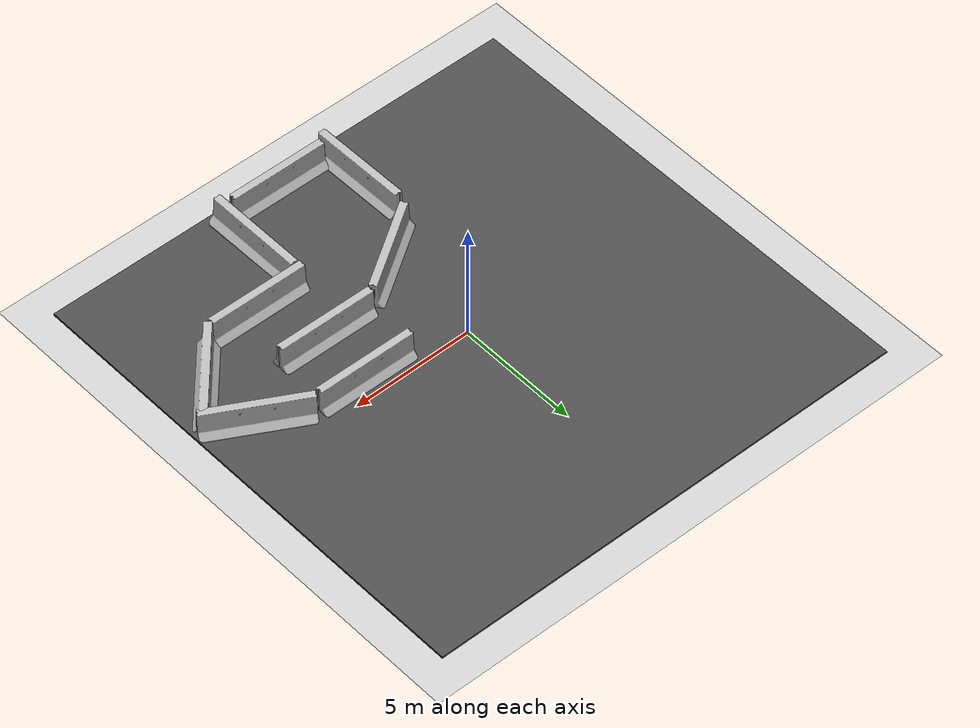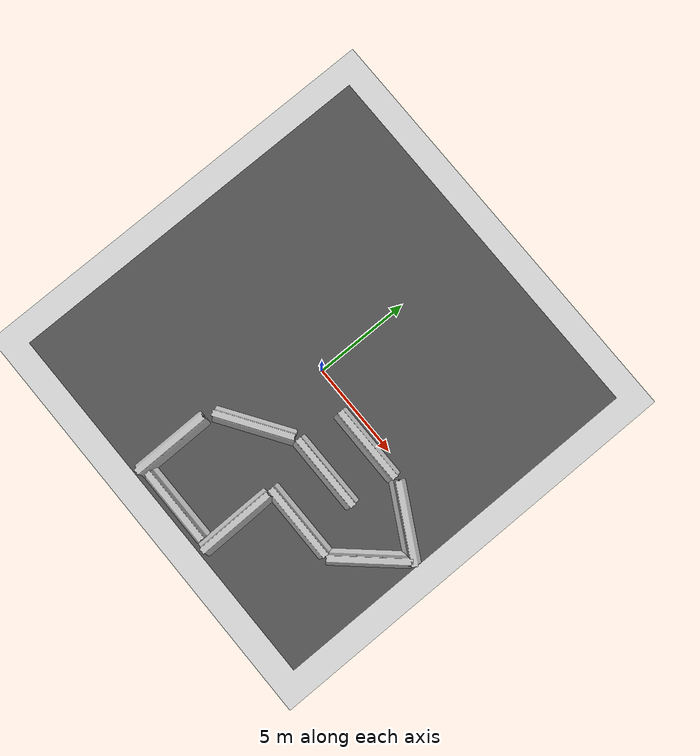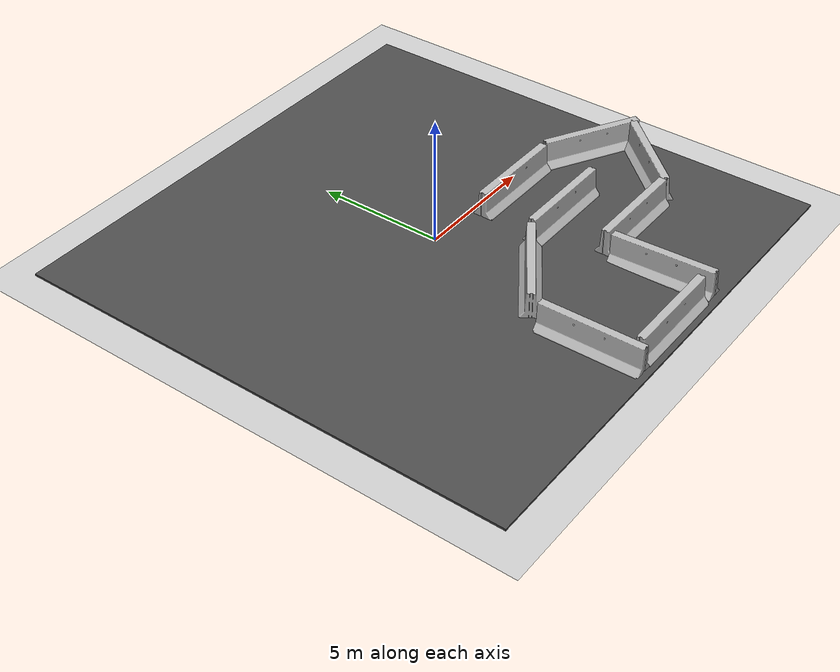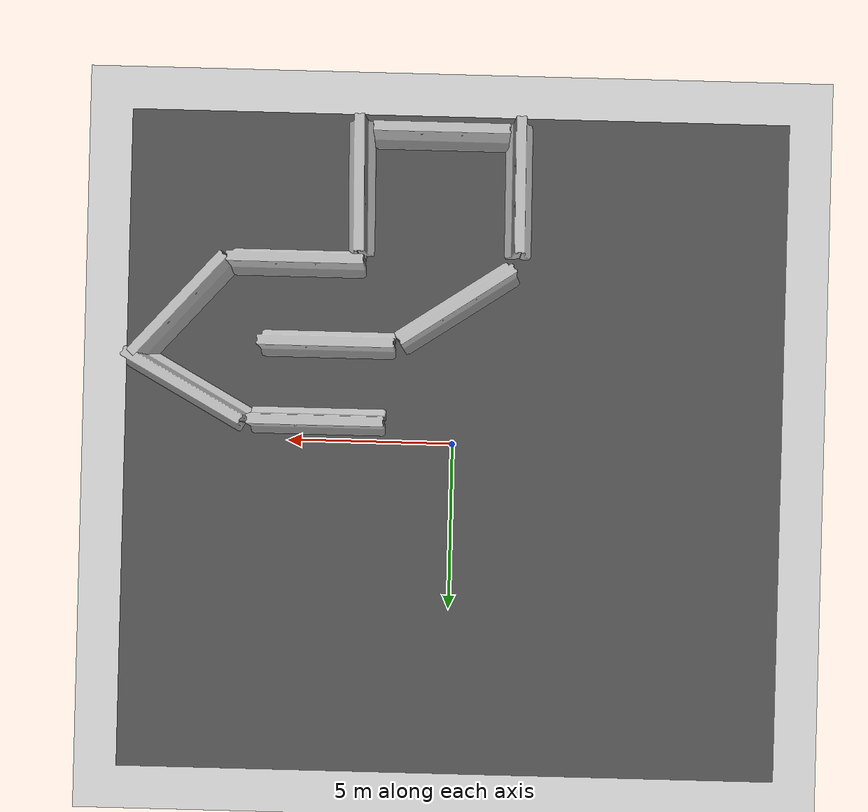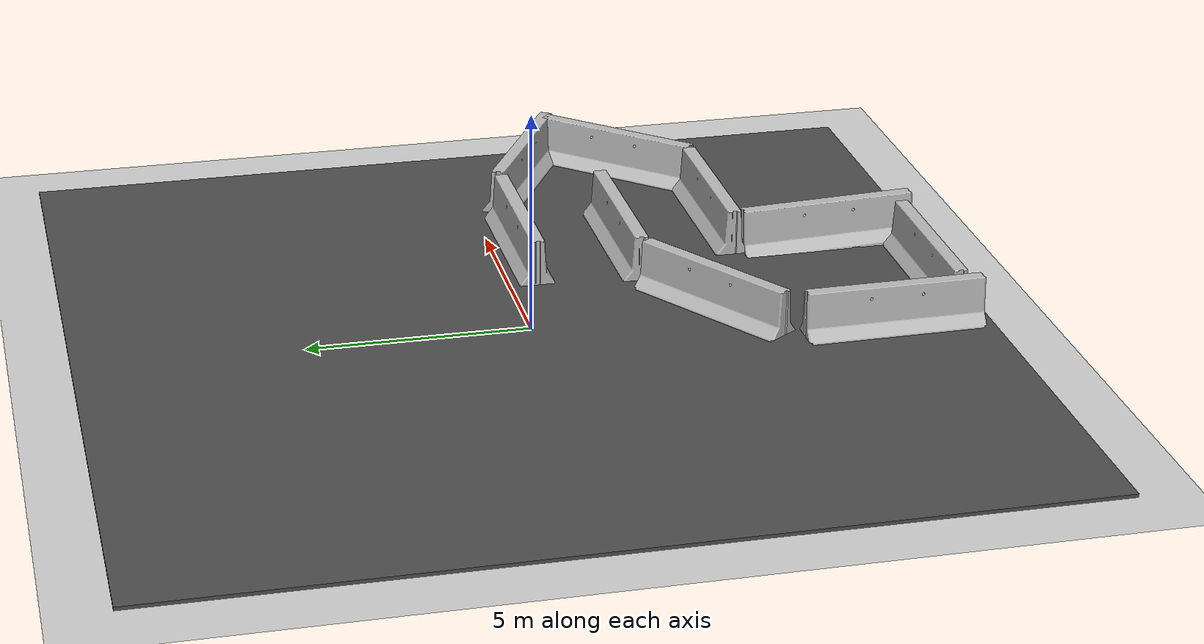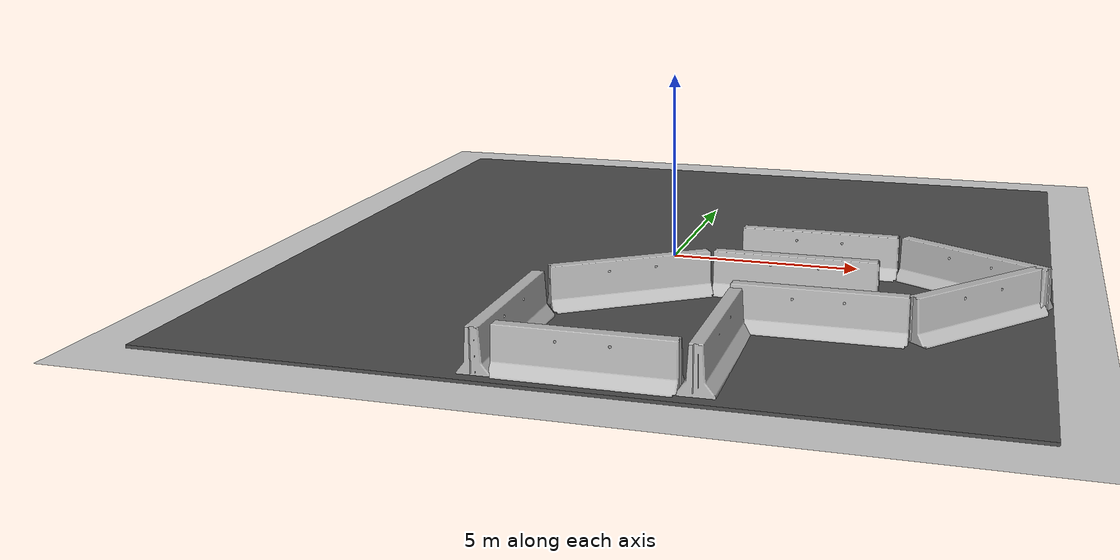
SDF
<sdf version="1.6">
 <world name="default">
  <light name="sun" type="directional">
   <pose>0 0 10 0 -0 0</pose>
   <diffuse>0.8 0.8 0.8 1</diffuse>
   <specular>0.2 0.2 0.2 1</specular>
   <attenuation>
    <range>1000</range>
    <constant>0.9</constant>
    <linear>0.01</linear>
    <quadratic>0.001</quadratic>
   </attenuation>
   <direction>-0.5 0.1 -0.9</direction>
  </light>
  <model name="ground_plane">
   <static>1</static>
   <link name="link">
    <collision name="collision">
     <geometry><plane><normal>0 0 1</normal><size>100 100</size></plane></geometry>
     <surface>
      <contact><collide_bitmask>65535</collide_bitmask></contact>
      <friction><ode><mu>100</mu><mu2>50</mu2></ode></friction>
     </surface>
    </collision>
    <visual name="visual">
     <cast_shadows>0</cast_shadows>
     <geometry><plane><normal>0 0 1</normal><size>100 100</size></plane></geometry>
     <material>
      <script><uri>file://media/materials/scripts/gazebo.material</uri><name>Gazebo/Grey</name></script>
     </material>
    </visual>
   </link>
  </model>
  <gravity>0 0 -9.8</gravity>
  <magnetic_field>6e-06 2.3e-05 -4.2e-05</magnetic_field>
  <atmosphere type="adiabatic"/>
  <physics name="default_physics" default="0" type="ode">
   <max_step_size>0.001</max_step_size>
   <real_time_factor>1</real_time_factor>
   <real_time_update_rate>1000</real_time_update_rate>
  </physics>
  <scene><ambient>0.4 0.4 0.4 1</ambient><background>0.7 0.7 0.7 1</background><shadows>1</shadows></scene>
  <spherical_coordinates>
   <surface_model>EARTH_WGS84</surface_model>
   <latitude_deg>0</latitude_deg>
   <longitude_deg>0</longitude_deg>
   <elevation>0</elevation>
   <heading_deg>0</heading_deg>
  </spherical_coordinates>
  <model name="asphalt_plane">
   <static>1</static>
   <link name="link">
    <collision name="collision"><geometry><box><size>20 20 0.1</size></box></geometry></collision>
    <visual name="visual">
     <cast_shadows>0</cast_shadows>
     <geometry><box><size>20 20 0.1</size></box></geometry>
     <material>
      <script>
       <uri>model://asphalt_plane/materials/scripts</uri>
       <uri>model://asphalt_plane/materials/textures</uri>
       <name>vrc/asphalt</name>
      </script>
     </material>
    </visual>
   </link>
   <pose>-0.011182 0.028109 0 0 -0 0</pose>
  </model>
  <model name="jersey_barrier">
   <static>1</static>
   <link name="link">
    <visual name="visual">
     <geometry><mesh><uri>model://jersey_barrier/meshes/jersey_barrier.dae</uri></mesh></geometry>
    </visual>
    <collision name="upright">
     <pose>0 0 0.5715 0 -0 0</pose>
     <geometry><box><size>4.06542 0.3063 1.143</size></box></geometry>
    </collision>
    <collision name="base">
     <pose>0 0 0.032258 0 -0 0</pose>
     <geometry><box><size>4.06542 0.8107 0.064516</size></box></geometry>
    </collision>
    <collision name="base2">
     <pose>0 0 0.1 0 -0 0</pose>
     <geometry><box><size>4.06542 0.65 0.1</size></box></geometry>
    </collision>
    <collision name="base3">
     <pose>0 0 0.2 0 -0 0</pose>
     <geometry><box><size>4.06542 0.5 0.1</size></box></geometry>
    </collision>
    <collision name="left-angle">
     <pose>0 -0.224 0.2401 0.9 -0 0</pose>
     <geometry><box><size>4.06542 0.5 0.064516</size></box></geometry>
    </collision>
    <collision name="right-angle">
     <pose>0 0.224 0.2401 -0.9 0 0</pose>
     <geometry><box><size>4.06542 0.5 0.064516</size></box></geometry>
    </collision>
   </link>
   <pose>-1.81278 -7.70724 0 0 0 -1.56071</pose>
  </model>
  <model name="jersey_barrier_0">
   <static>1</static>
   <link name="link">
    <visual name="visual">
     <geometry><mesh><uri>model://jersey_barrier/meshes/jersey_barrier.dae</uri></mesh></geometry>
    </visual>
    <collision name="upright">
     <pose>0 0 0.5715 0 -0 0</pose>
     <geometry><box><size>4.06542 0.3063 1.143</size></box></geometry>
    </collision>
    <collision name="base">
     <pose>0 0 0.032258 0 -0 0</pose>
     <geometry><box><size>4.06542 0.8107 0.064516</size></box></geometry>
    </collision>
    <collision name="base2">
     <pose>0 0 0.1 0 -0 0</pose>
     <geometry><box><size>4.06542 0.65 0.1</size></box></geometry>
    </collision>
    <collision name="base3">
     <pose>0 0 0.2 0 -0 0</pose>
     <geometry><box><size>4.06542 0.5 0.1</size></box></geometry>
    </collision>
    <collision name="left-angle">
     <pose>0 -0.224 0.2401 0.9 -0 0</pose>
     <geometry><box><size>4.06542 0.5 0.064516</size></box></geometry>
    </collision>
    <collision name="right-angle">
     <pose>0 0.224 0.2401 -0.9 0 0</pose>
     <geometry><box><size>4.06542 0.5 0.064516</size></box></geometry>
    </collision>
   </link>
   <pose>0.550087 -9.34139 0 0 -0 0</pose>
  </model>
  <model name="jersey_barrier_1">
   <static>1</static>
   <link name="link">
    <visual name="visual">
     <geometry><mesh><uri>model://jersey_barrier/meshes/jersey_barrier.dae</uri></mesh></geometry>
    </visual>
    <collision name="upright">
     <pose>0 0 0.5715 0 -0 0</pose>
     <geometry><box><size>4.06542 0.3063 1.143</size></box></geometry>
    </collision>
    <collision name="base">
     <pose>0 0 0.032258 0 -0 0</pose>
     <geometry><box><size>4.06542 0.8107 0.064516</size></box></geometry>
    </collision>
    <collision name="base2">
     <pose>0 0 0.1 0 -0 0</pose>
     <geometry><box><size>4.06542 0.65 0.1</size></box></geometry>
    </collision>
    <collision name="base3">
     <pose>0 0 0.2 0 -0 0</pose>
     <geometry><box><size>4.06542 0.5 0.1</size></box></geometry>
    </collision>
    <collision name="left-angle">
     <pose>0 -0.224 0.2401 0.9 -0 0</pose>
     <geometry><box><size>4.06542 0.5 0.064516</size></box></geometry>
    </collision>
    <collision name="right-angle">
     <pose>0 0.224 0.2401 -0.9 0 0</pose>
     <geometry><box><size>4.06542 0.5 0.064516</size></box></geometry>
    </collision>
   </link>
   <pose>2.94739 -7.68339 0 -0.000437 -0.026825 -1.55451</pose>
  </model>
  <model name="jersey_barrier_2">
   <static>1</static>
   <link name="link">
    <visual name="visual">
     <geometry><mesh><uri>model://jersey_barrier/meshes/jersey_barrier.dae</uri></mesh></geometry>
    </visual>
    <collision name="upright">
     <pose>0 0 0.5715 0 -0 0</pose>
     <geometry><box><size>4.06542 0.3063 1.143</size></box></geometry>
    </collision>
    <collision name="base">
     <pose>0 0 0.032258 0 -0 0</pose>
     <geometry><box><size>4.06542 0.8107 0.064516</size></box></geometry>
    </collision>
    <collision name="base2">
     <pose>0 0 0.1 0 -0 0</pose>
     <geometry><box><size>4.06542 0.65 0.1</size></box></geometry>
    </collision>
    <collision name="base3">
     <pose>0 0 0.2 0 -0 0</pose>
     <geometry><box><size>4.06542 0.5 0.1</size></box></geometry>
    </collision>
    <collision name="left-angle">
     <pose>0 -0.224 0.2401 0.9 -0 0</pose>
     <geometry><box><size>4.06542 0.5 0.064516</size></box></geometry>
    </collision>
    <collision name="right-angle">
     <pose>0 0.224 0.2401 -0.9 0 0</pose>
     <geometry><box><size>4.06542 0.5 0.064516</size></box></geometry>
    </collision>
   </link>
   <pose>-0.022966 -4.13469 0 0 -0 0.588233</pose>
  </model>
  <model name="jersey_barrier_3">
   <static>1</static>
   <link name="link">
    <visual name="visual">
     <geometry><mesh><uri>model://jersey_barrier/meshes/jersey_barrier.dae</uri></mesh></geometry>
    </visual>
    <collision name="upright">
     <pose>0 0 0.5715 0 -0 0</pose>
     <geometry><box><size>4.06542 0.3063 1.143</size></box></geometry>
    </collision>
    <collision name="base">
     <pose>0 0 0.032258 0 -0 0</pose>
     <geometry><box><size>4.06542 0.8107 0.064516</size></box></geometry>
    </collision>
    <collision name="base2">
     <pose>0 0 0.1 0 -0 0</pose>
     <geometry><box><size>4.06542 0.65 0.1</size></box></geometry>
    </collision>
    <collision name="base3">
     <pose>0 0 0.2 0 -0 0</pose>
     <geometry><box><size>4.06542 0.5 0.1</size></box></geometry>
    </collision>
    <collision name="left-angle">
     <pose>0 -0.224 0.2401 0.9 -0 0</pose>
     <geometry><box><size>4.06542 0.5 0.064516</size></box></geometry>
    </collision>
    <collision name="right-angle">
     <pose>0 0.224 0.2401 -0.9 0 0</pose>
     <geometry><box><size>4.06542 0.5 0.064516</size></box></geometry>
    </collision>
   </link>
   <pose>3.82947 -2.9445 0 0 -0 0</pose>
  </model>
  <model name="jersey_barrier_4">
   <static>1</static>
   <link name="link">
    <visual name="visual">
     <geometry><mesh><uri>model://jersey_barrier/meshes/jersey_barrier.dae</uri></mesh></geometry>
    </visual>
    <collision name="upright">
     <pose>0 0 0.5715 0 -0 0</pose>
     <geometry><box><size>4.06542 0.3063 1.143</size></box></geometry>
    </collision>
    <collision name="base">
     <pose>0 0 0.032258 0 -0 0</pose>
     <geometry><box><size>4.06542 0.8107 0.064516</size></box></geometry>
    </collision>
    <collision name="base2">
     <pose>0 0 0.1 0 -0 0</pose>
     <geometry><box><size>4.06542 0.65 0.1</size></box></geometry>
    </collision>
    <collision name="base3">
     <pose>0 0 0.2 0 -0 0</pose>
     <geometry><box><size>4.06542 0.5 0.1</size></box></geometry>
    </collision>
    <collision name="left-angle">
     <pose>0 -0.224 0.2401 0.9 -0 0</pose>
     <geometry><box><size>4.06542 0.5 0.064516</size></box></geometry>
    </collision>
    <collision name="right-angle">
     <pose>0 0.224 0.2401 -0.9 0 0</pose>
     <geometry><box><size>4.06542 0.5 0.064516</size></box></geometry>
    </collision>
   </link>
   <pose>4.78787 -5.39245 0 0 -0 0</pose>
  </model>
  <model name="jersey_barrier_5">
   <static>1</static>
   <link name="link">
    <visual name="visual">
     <geometry><mesh><uri>model://jersey_barrier/meshes/jersey_barrier.dae</uri></mesh></geometry>
    </visual>
    <collision name="upright">
     <pose>0 0 0.5715 0 -0 0</pose>
     <geometry><box><size>4.06542 0.3063 1.143</size></box></geometry>
    </collision>
    <collision name="base">
     <pose>0 0 0.032258 0 -0 0</pose>
     <geometry><box><size>4.06542 0.8107 0.064516</size></box></geometry>
    </collision>
    <collision name="base2">
     <pose>0 0 0.1 0 -0 0</pose>
     <geometry><box><size>4.06542 0.65 0.1</size></box></geometry>
    </collision>
    <collision name="base3">
     <pose>0 0 0.2 0 -0 0</pose>
     <geometry><box><size>4.06542 0.5 0.1</size></box></geometry>
    </collision>
    <collision name="left-angle">
     <pose>0 -0.224 0.2401 0.9 -0 0</pose>
     <geometry><box><size>4.06542 0.5 0.064516</size></box></geometry>
    </collision>
    <collision name="right-angle">
     <pose>0 0.224 0.2401 -0.9 0 0</pose>
     <geometry><box><size>4.06542 0.5 0.064516</size></box></geometry>
    </collision>
   </link>
   <pose>8.24263 -3.9473 0 0 -0 0.839382</pose>
  </model>
  <model name="jersey_barrier_6">
   <static>1</static>
   <link name="link">
    <visual name="visual">
     <geometry><mesh><uri>model://jersey_barrier/meshes/jersey_barrier.dae</uri></mesh></geometry>
    </visual>
    <collision name="upright">
     <pose>0 0 0.5715 0 -0 0</pose>
     <geometry><box><size>4.06542 0.3063 1.143</size></box></geometry>
    </collision>
    <collision name="base">
     <pose>0 0 0.032258 0 -0 0</pose>
     <geometry><box><size>4.06542 0.8107 0.064516</size></box></geometry>
    </collision>
    <collision name="base2">
     <pose>0 0 0.1 0 -0 0</pose>
     <geometry><box><size>4.06542 0.65 0.1</size></box></geometry>
    </collision>
    <collision name="base3">
     <pose>0 0 0.2 0 -0 0</pose>
     <geometry><box><size>4.06542 0.5 0.1</size></box></geometry>
    </collision>
    <collision name="left-angle">
     <pose>0 -0.224 0.2401 0.9 -0 0</pose>
     <geometry><box><size>4.06542 0.5 0.064516</size></box></geometry>
    </collision>
    <collision name="right-angle">
     <pose>0 0.224 0.2401 -0.9 0 0</pose>
     <geometry><box><size>4.06542 0.5 0.064516</size></box></geometry>
    </collision>
   </link>
   <pose>8.03544 -1.54856 0 0 0 -0.508447</pose>
  </model>
  <model name="jersey_barrier_7">
   <static>1</static>
   <link name="link">
    <visual name="visual">
     <geometry><mesh><uri>model://jersey_barrier/meshes/jersey_barrier.dae</uri></mesh></geometry>
    </visual>
    <collision name="upright">
     <pose>0 0 0.5715 0 -0 0</pose>
     <geometry><box><size>4.06542 0.3063 1.143</size></box></geometry>
    </collision>
    <collision name="base">
     <pose>0 0 0.032258 0 -0 0</pose>
     <geometry><box><size>4.06542 0.8107 0.064516</size></box></geometry>
    </collision>
    <collision name="base2">
     <pose>0 0 0.1 0 -0 0</pose>
     <geometry><box><size>4.06542 0.65 0.1</size></box></geometry>
    </collision>
    <collision name="base3">
     <pose>0 0 0.2 0 -0 0</pose>
     <geometry><box><size>4.06542 0.5 0.1</size></box></geometry>
    </collision>
    <collision name="left-angle">
     <pose>0 -0.224 0.2401 0.9 -0 0</pose>
     <geometry><box><size>4.06542 0.5 0.064516</size></box></geometry>
    </collision>
    <collision name="right-angle">
     <pose>0 0.224 0.2401 -0.9 0 0</pose>
     <geometry><box><size>4.06542 0.5 0.064516</size></box></geometry>
    </collision>
   </link>
   <pose>4.08234 -0.606654 0 0 -0 0</pose>
  </model>
 </world>
</sdf>
